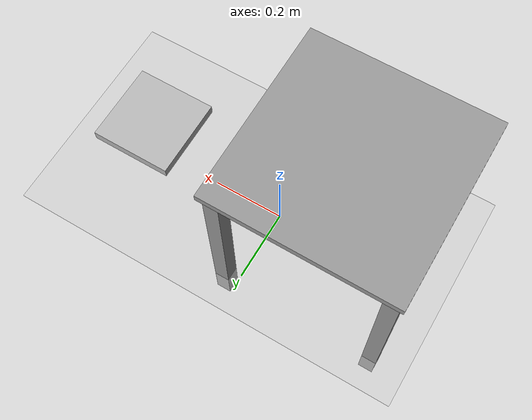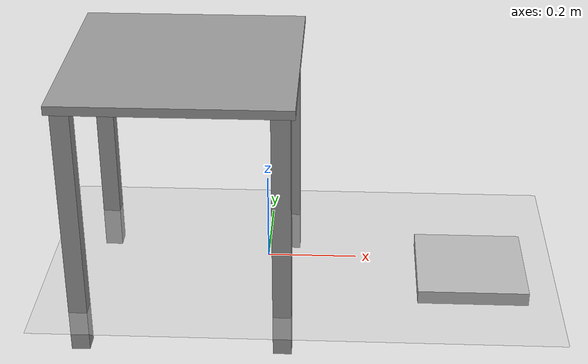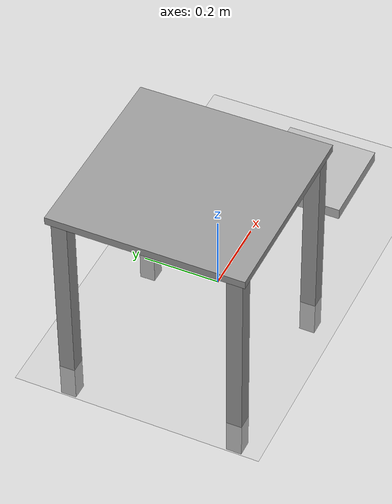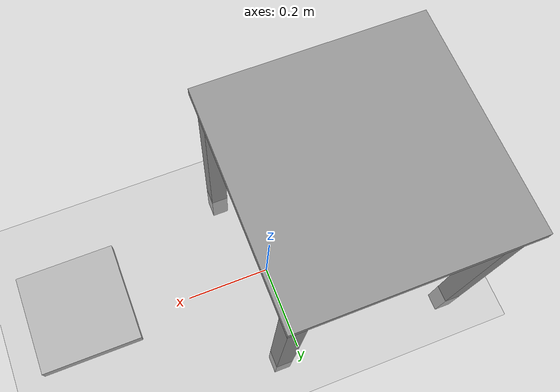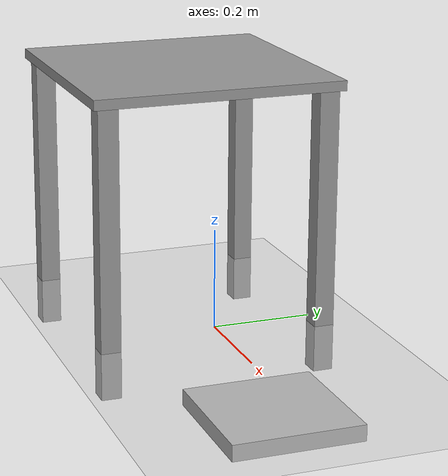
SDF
<sdf version="1.6">
 <world name="default">
  <plugin name="ros_link_attacher_plugin" filename="libgazebo_ros_link_attacher.so"/>
  <light name="sun" type="directional">
   <pose>0 0 10 0 -0 0</pose>
   <diffuse>0.8 0.8 0.8 1</diffuse>
   <specular>0.2 0.2 0.2 1</specular>
   <attenuation>
    <range>1000</range>
    <constant>0.9</constant>
    <linear>0.01</linear>
    <quadratic>0.001</quadratic>
   </attenuation>
   <direction>-0.5 0.1 -0.9</direction>
  </light>
  <model name="ground_plane">
   <static>1</static>
   <link name="link">
    <collision name="collision">
     <geometry><plane><normal>0 0 1</normal><size>100 100</size></plane></geometry>
     <surface><friction><ode><mu>100</mu><mu2>50</mu2></ode></friction></surface>
    </collision>
    <visual name="visual">
     <cast_shadows>0</cast_shadows>
     <geometry><plane><normal>0 0 1</normal><size>100 100</size></plane></geometry>
     <material>
      <script><uri>file://media/materials/scripts/gazebo.material</uri><name>Gazebo/Grey</name></script>
     </material>
    </visual>
   </link>
  </model>
  <gravity>0 0 -9.8</gravity>
  <magnetic_field>6e-06 2.3e-05 -4.2e-05</magnetic_field>
  <atmosphere type="adiabatic"/>
  <physics name="default_physics" default="0" type="ode">
   <max_step_size>0.001</max_step_size>
   <real_time_factor>1</real_time_factor>
   <real_time_update_rate>1000</real_time_update_rate>
  </physics>
  <scene><ambient>0.4 0.4 0.4 1</ambient><background>0.7 0.7 0.7 1</background><shadows>1</shadows></scene>
  <spherical_coordinates>
   <surface_model>EARTH_WGS84</surface_model>
   <latitude_deg>0</latitude_deg>
   <longitude_deg>0</longitude_deg>
   <elevation>0</elevation>
   <heading_deg>0</heading_deg>
  </spherical_coordinates>
  <model name="ur5_base">
   <static>1</static>
   <link name="top_plate">
    <pose>0 0 0.58 0 -0 0</pose>
    <collision name="top_plate_collision">
     <geometry><box><size>0.5 0.5 0.02</size></box></geometry>
     <surface><contact><collide_bitmask>1</collide_bitmask></contact></surface>
    </collision>
    <visual name="top_plate_visual">
     <geometry><box><size>0.5 0.5 0.02</size></box></geometry>
     <material>
      <script><uri>file://media/materials/scripts/gazebo.material</uri><name>Gazebo/Grey</name></script>
     </material>
    </visual>
   </link>
   <link name="leg1">
    <pose>0.22 0.22 0.285 0 -0 0</pose>
    <collision name="leg1_collision"><geometry><box><size>0.04 0.04 0.57</size></box></geometry></collision>
    <visual name="leg1_visual">
     <geometry><box><size>0.04 0.04 0.57</size></box></geometry>
     <material>
      <script><uri>file://media/materials/scripts/gazebo.material</uri><name>Gazebo/Grey</name></script>
     </material>
    </visual>
   </link>
   <link name="leg2">
    <pose>-0.22 0.22 0.285 0 -0 0</pose>
    <collision name="leg2_collision"><geometry><box><size>0.04 0.04 0.57</size></box></geometry></collision>
    <visual name="leg2_visual">
     <geometry><box><size>0.04 0.04 0.57</size></box></geometry>
     <material>
      <script><uri>file://media/materials/scripts/gazebo.material</uri><name>Gazebo/Grey</name></script>
     </material>
    </visual>
   </link>
   <link name="leg3">
    <pose>0.22 -0.22 0.285 0 -0 0</pose>
    <collision name="leg3_collision"><geometry><box><size>0.04 0.04 0.57</size></box></geometry></collision>
    <visual name="leg3_visual">
     <geometry><box><size>0.04 0.04 0.57</size></box></geometry>
     <material>
      <script><uri>file://media/materials/scripts/gazebo.material</uri><name>Gazebo/Grey</name></script>
     </material>
    </visual>
   </link>
   <link name="leg4">
    <pose>-0.22 -0.22 0.285 0 -0 0</pose>
    <collision name="leg4_collision"><geometry><box><size>0.04 0.04 0.57</size></box></geometry></collision>
    <visual name="leg4_visual">
     <geometry><box><size>0.04 0.04 0.57</size></box></geometry>
     <material>
      <script><uri>file://media/materials/scripts/gazebo.material</uri><name>Gazebo/Grey</name></script>
     </material>
    </visual>
   </link>
   <pose>-0.1759 -0.012384 -0.095642 0 -0 0</pose>
  </model>
  <audio><device>default</device></audio>
  <model name="aruco">
   <link name="link">
    <inertial>
     <inertia>
      <ixx>0.00480008</ixx>
      <ixy>0</ixy>
      <ixz>0</ixz>
      <iyy>0.00480083</iyy>
      <iyz>0</iyz>
      <izz>0.0096</izz>
     </inertia>
     <mass>1</mass>
    </inertial>
    <collision name="collision">
     <geometry><box><size>0.24 0.24 0.03</size></box></geometry>
     <surface><friction><ode><mu>100</mu><mu2>50</mu2></ode></friction></surface>
    </collision>
    <visual name="visual">
     <cast_shadows>0</cast_shadows>
     <geometry><box><size>0.24 0.24 0.03</size></box></geometry>
     <material>
      <script>
       <uri>model://aruco/materials/scripts</uri>
       <uri>model://aruco/materials/textures</uri>
       <name>aruco/Image</name>
      </script>
     </material>
    </visual>
   </link>
   <pose>0.455683 -0.064933 0.014987 0.000107 -0 -8.1e-05</pose>
  </model>
 </world>
</sdf>
